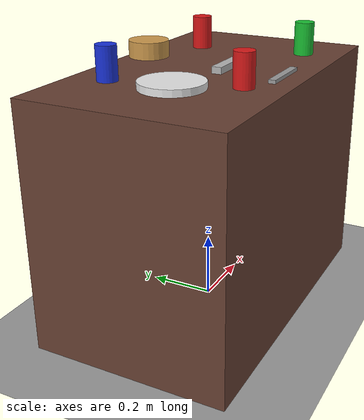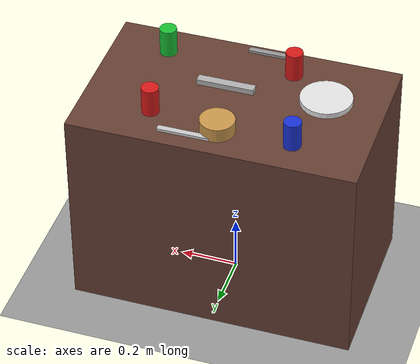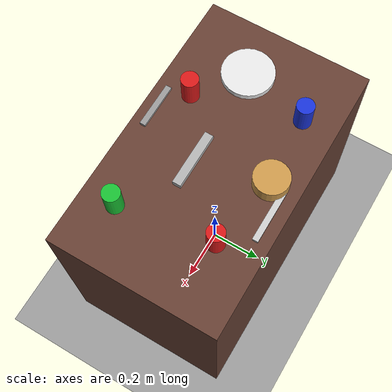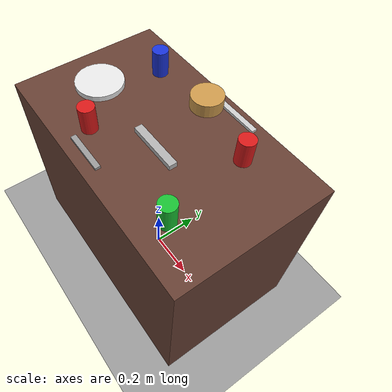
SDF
<?xml version="1.0"?>
<sdf version="1.6">
  <world name="default">
    <physics type="ode">
      <real_time_factor>1.0</real_time_factor>
      <max_step_size>0.001</max_step_size>
    </physics>

    <light name="sun" type="directional">
      <pose>0 0 10 0 0 0</pose>
      <cast_shadows>true</cast_shadows>
      <diffuse>1 1 1 1</diffuse>
      <specular>0.1 0.1 0.1 1</specular>
      <direction>-0.5 0.5 -1</direction>
    </light>

    <model name="ground_plane">
      <static>true</static>
      <link name="link">
        <collision name="collision">
          <geometry>
            <plane>
              <normal>0 0 1</normal>
              <size>10 10</size>
            </plane>
          </geometry>
        </collision>
        <visual name="visual">
          <geometry>
            <plane>
              <normal>0 0 1</normal>
              <size>10 10</size>
            </plane>
          </geometry>
          <material>
            <diffuse>0.6 0.6 0.6 1</diffuse>
            <specular>0.1 0.1 0.1 1</specular>
          </material>
        </visual>
      </link>
    </model>

    <model name="table">
      <static>true</static>
      <pose>0 0 0.375 0 0 0</pose>
      <link name="link">
        <collision name="collision">
          <geometry>
            <box>
              <size>1.0 0.6 0.75</size>
            </box>
          </geometry>
        </collision>
        <visual name="visual">
          <geometry>
            <box>
              <size>1.0 0.6 0.75</size>
            </box>
          </geometry>
          <material>
            <diffuse>0.4 0.25 0.2 1</diffuse>
            <specular>0.05 0.05 0.05 1</specular>
          </material>
        </visual>
      </link>
    </model>

    <model name="cup_red_1">
      <pose>0.25 0.15 0.80 0 0 0</pose>
      <link name="link">
        <inertial>
          <mass>0.2</mass>
          <inertia>
            <ixx>0.0002</ixx>
            <iyy>0.0002</iyy>
            <izz>0.00018</izz>
          </inertia>
        </inertial>
        <collision name="collision">
          <geometry>
            <cylinder>
              <radius>0.03</radius>
              <length>0.1</length>
            </cylinder>
          </geometry>
        </collision>
        <visual name="visual">
          <geometry>
            <cylinder>
              <radius>0.03</radius>
              <length>0.1</length>
            </cylinder>
          </geometry>
          <material>
            <diffuse>0.85 0.1 0.1 1</diffuse>
            <specular>0.2 0.2 0.2 1</specular>
          </material>
        </visual>
      </link>
    </model>

    <model name="cup_red_2">
      <pose>-0.15 -0.18 0.80 0 0 0</pose>
      <link name="link">
        <inertial>
          <mass>0.2</mass>
          <inertia>
            <ixx>0.0002</ixx>
            <iyy>0.0002</iyy>
            <izz>0.00018</izz>
          </inertia>
        </inertial>
        <collision name="collision">
          <geometry>
            <cylinder>
              <radius>0.03</radius>
              <length>0.1</length>
            </cylinder>
          </geometry>
        </collision>
        <visual name="visual">
          <geometry>
            <cylinder>
              <radius>0.03</radius>
              <length>0.1</length>
            </cylinder>
          </geometry>
          <material>
            <diffuse>0.85 0.1 0.1 1</diffuse>
            <specular>0.2 0.2 0.2 1</specular>
          </material>
        </visual>
      </link>
    </model>

    <model name="knife_1">
      <pose>0.05 -0.05 0.76 0 0 0</pose>
      <link name="link">
        <inertial>
          <mass>0.1</mass>
          <inertia>
            <ixx>0.00005</ixx>
            <iyy>0.0002</iyy>
            <izz>0.0002</izz>
          </inertia>
        </inertial>
        <collision name="collision">
          <geometry>
            <box>
              <size>0.2 0.03 0.02</size>
            </box>
          </geometry>
        </collision>
        <visual name="visual">
          <geometry>
            <box>
              <size>0.2 0.03 0.02</size>
            </box>
          </geometry>
          <material>
            <diffuse>0.7 0.7 0.7 1</diffuse>
            <specular>0.3 0.3 0.3 1</specular>
          </material>
        </visual>
      </link>
    </model>

    <model name="cup_blue_1">
      <pose>-0.25 0.18 0.80 0 0 0</pose>
      <link name="link">
        <inertial>
          <mass>0.2</mass>
          <inertia>
            <ixx>0.0002</ixx>
            <iyy>0.0002</iyy>
            <izz>0.00018</izz>
          </inertia>
        </inertial>
        <collision name="collision">
          <geometry>
            <cylinder>
              <radius>0.03</radius>
              <length>0.1</length>
            </cylinder>
          </geometry>
        </collision>
        <visual name="visual">
          <geometry>
            <cylinder>
              <radius>0.03</radius>
              <length>0.1</length>
            </cylinder>
          </geometry>
          <material>
            <diffuse>0.1 0.2 0.85 1</diffuse>
            <specular>0.2 0.2 0.2 1</specular>
          </material>
        </visual>
      </link>
    </model>

    <model name="cup_green_1">
      <pose>0.30 -0.18 0.80 0 0 0</pose>
      <link name="link">
        <inertial>
          <mass>0.2</mass>
          <inertia>
            <ixx>0.0002</ixx>
            <iyy>0.0002</iyy>
            <izz>0.00018</izz>
          </inertia>
        </inertial>
        <collision name="collision">
          <geometry>
            <cylinder>
              <radius>0.03</radius>
              <length>0.1</length>
            </cylinder>
          </geometry>
        </collision>
        <visual name="visual">
          <geometry>
            <cylinder>
              <radius>0.03</radius>
              <length>0.1</length>
            </cylinder>
          </geometry>
          <material>
            <diffuse>0.1 0.75 0.2 1</diffuse>
            <specular>0.2 0.2 0.2 1</specular>
          </material>
        </visual>
      </link>
    </model>

    <model name="bowl_1">
      <pose>0.00 0.20 0.79 0 0 0</pose>
      <link name="link">
        <inertial>
          <mass>0.25</mass>
          <inertia>
            <ixx>0.0003</ixx>
            <iyy>0.0003</iyy>
            <izz>0.00025</izz>
          </inertia>
        </inertial>
        <collision name="collision">
          <geometry>
            <cylinder>
              <radius>0.06</radius>
              <length>0.05</length>
            </cylinder>
          </geometry>
        </collision>
        <visual name="visual">
          <geometry>
            <cylinder>
              <radius>0.06</radius>
              <length>0.05</length>
            </cylinder>
          </geometry>
          <material>
            <diffuse>0.8 0.6 0.3 1</diffuse>
            <specular>0.1 0.1 0.1 1</specular>
          </material>
        </visual>
      </link>
    </model>

    <model name="plate_1">
      <pose>-0.30 -0.05 0.78 0 0 0</pose>
      <link name="link">
        <inertial>
          <mass>0.25</mass>
          <inertia>
            <ixx>0.0004</ixx>
            <iyy>0.0004</iyy>
            <izz>0.0003</izz>
          </inertia>
        </inertial>
        <collision name="collision">
          <geometry>
            <cylinder>
              <radius>0.09</radius>
              <length>0.02</length>
            </cylinder>
          </geometry>
        </collision>
        <visual name="visual">
          <geometry>
            <cylinder>
              <radius>0.09</radius>
              <length>0.02</length>
            </cylinder>
          </geometry>
          <material>
            <diffuse>0.9 0.9 0.9 1</diffuse>
            <specular>0.2 0.2 0.2 1</specular>
          </material>
        </visual>
      </link>
    </model>

    <model name="spoon_1">
      <pose>0.10 0.25 0.77 0 0 0</pose>
      <link name="link">
        <inertial>
          <mass>0.05</mass>
          <inertia>
            <ixx>0.00002</ixx>
            <iyy>0.00008</iyy>
            <izz>0.00008</izz>
          </inertia>
        </inertial>
        <collision name="collision">
          <geometry>
            <box>
              <size>0.18 0.02 0.01</size>
            </box>
          </geometry>
        </collision>
        <visual name="visual">
          <geometry>
            <box>
              <size>0.18 0.02 0.01</size>
            </box>
          </geometry>
          <material>
            <diffuse>0.8 0.8 0.8 1</diffuse>
            <specular>0.25 0.25 0.25 1</specular>
          </material>
        </visual>
      </link>
    </model>

    <model name="scissors_1">
      <pose>-0.05 -0.25 0.77 0 0 0</pose>
      <link name="link">
        <inertial>
          <mass>0.08</mass>
          <inertia>
            <ixx>0.00003</ixx>
            <iyy>0.00009</iyy>
            <izz>0.00009</izz>
          </inertia>
        </inertial>
        <collision name="collision">
          <geometry>
            <box>
              <size>0.16 0.02 0.01</size>
            </box>
          </geometry>
        </collision>
        <visual name="visual">
          <geometry>
            <box>
              <size>0.16 0.02 0.01</size>
            </box>
          </geometry>
          <material>
            <diffuse>0.6 0.6 0.6 1</diffuse>
            <specular>0.3 0.3 0.3 1</specular>
          </material>
        </visual>
      </link>
    </model>
  </world>
</sdf>
